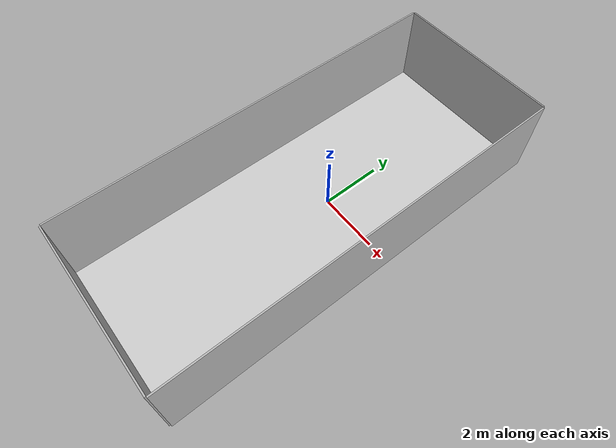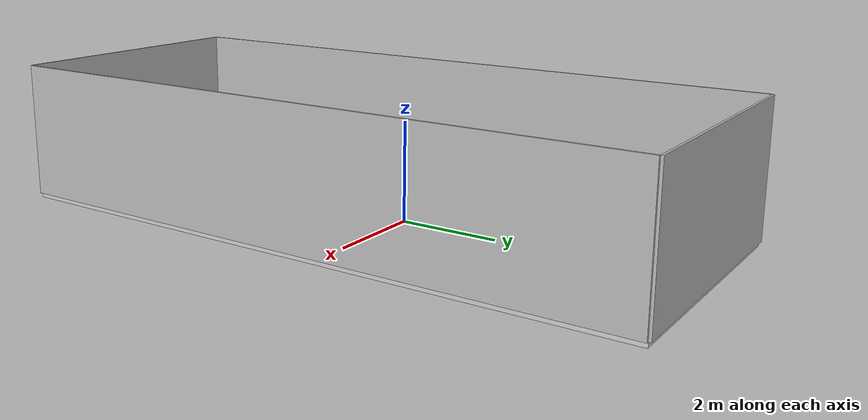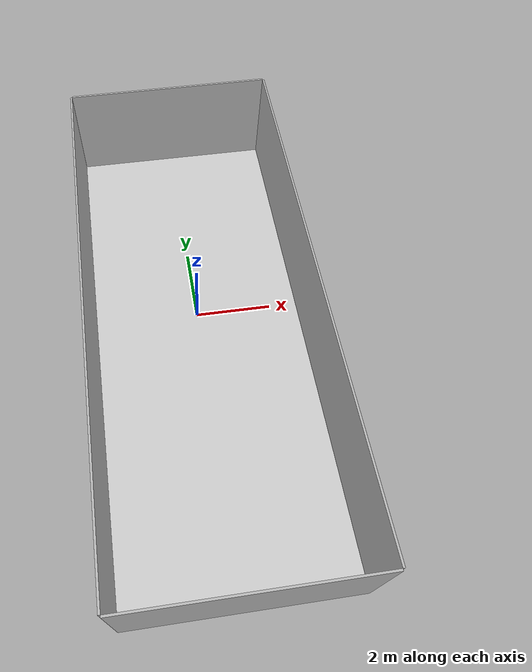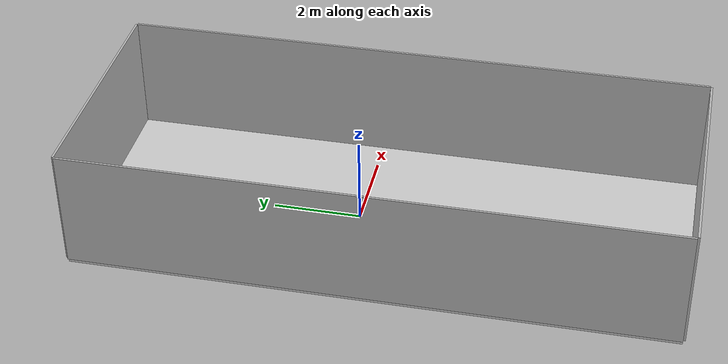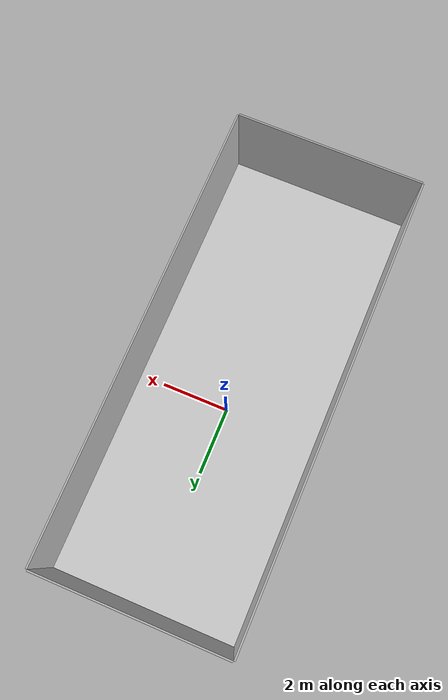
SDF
<sdf version="1.9">
 <world name="NCR_Indoor_Lab">
  <gravity>0 0 -9.81</gravity>
  <plugin filename="gz-sim-physics-system" name="gz::sim::systems::Physics"/>
  <plugin filename="gz-sim-user-commands-system" name="gz::sim::systems::UserCommands"/>
  <plugin filename="gz-sim-scene-broadcaster-system" name="gz::sim::systems::SceneBroadcaster"/>
  <scene><ambient>0.7 0.7 0.7 1.0</ambient><background>0.95 0.95 0.95 1.0</background></scene>
  <light name="sun" type="directional">
   <pose>0 0 10 0 0 0</pose>
   <diffuse>0.85 0.85 0.85 1.0</diffuse>
   <specular>0.2 0.2 0.2 1.0</specular>
   <direction>-0.4 0.2 -1.0</direction>
  </light>
  <model name="floor">
   <static>true</static>
   <link name="link">
    <pose>0 -0.75 -0.05 0 0 0</pose>
    <collision name="collision"><geometry><box><size>5.5 13.5 0.1</size></box></geometry></collision>
    <visual name="visual">
     <geometry><box><size>5.5 13.5 0.1</size></box></geometry>
     <material><ambient>0.8 0.8 0.8 1.0</ambient><diffuse>0.8 0.8 0.8 1.0</diffuse></material>
    </visual>
   </link>
  </model>
  <model name="west_wall">
   <static>true</static>
   <link name="link">
    <pose>-2.775 -0.75 1.375 0 0 0</pose>
    <collision name="collision"><geometry><box><size>0.05 13.5 2.75</size></box></geometry></collision>
    <visual name="visual"><geometry><box><size>0.05 13.5 2.75</size></box></geometry></visual>
   </link>
  </model>
  <model name="east_wall">
   <static>true</static>
   <link name="link">
    <pose>2.775 -0.75 1.375 0 0 0</pose>
    <collision name="collision"><geometry><box><size>0.05 13.5 2.75</size></box></geometry></collision>
    <visual name="visual"><geometry><box><size>0.05 13.5 2.75</size></box></geometry></visual>
   </link>
  </model>
  <model name="north_wall">
   <static>true</static>
   <link name="link">
    <pose>0 6.025 1.375 0 0 0</pose>
    <collision name="collision"><geometry><box><size>5.5 0.05 2.75</size></box></geometry></collision>
    <visual name="visual"><geometry><box><size>5.5 0.05 2.75</size></box></geometry></visual>
   </link>
  </model>
  <model name="south_wall">
   <static>true</static>
   <link name="link">
    <pose>0 -7.525 1.375 0 0 0</pose>
    <collision name="collision"><geometry><box><size>5.5 0.05 2.75</size></box></geometry></collision>
    <visual name="visual"><geometry><box><size>5.5 0.05 2.75</size></box></geometry></visual>
   </link>
  </model>
 </world>
</sdf>
